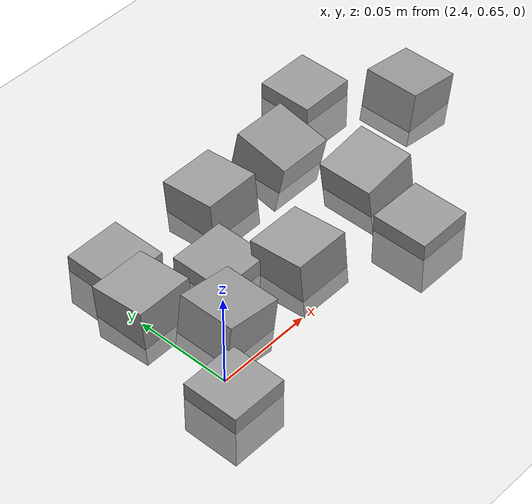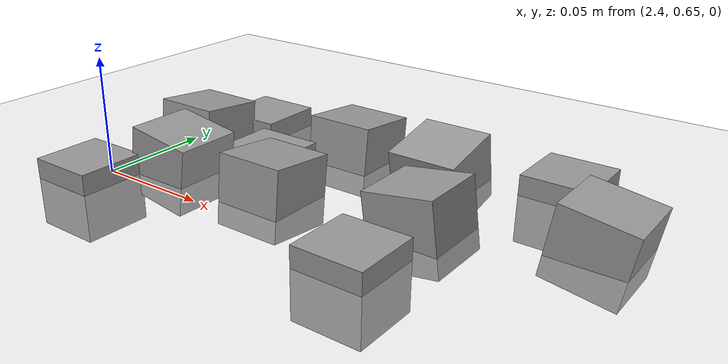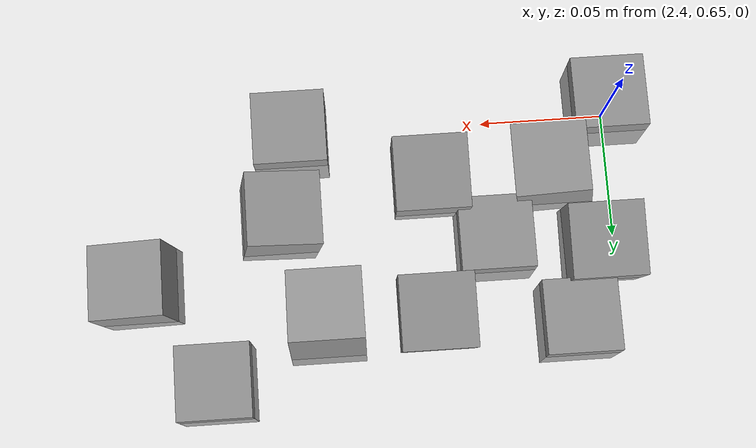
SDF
<sdf version="1.7">
 <world name="default">
  <model name="ground_plane">
   <static>1</static>
   <link name="link">
    <collision name="collision">
     <geometry><plane><normal>0 0 1</normal><size>100 100</size></plane></geometry>
     <surface><friction><ode><mu>100</mu><mu2>50</mu2></ode></friction></surface>
    </collision>
    <visual name="visual">
     <cast_shadows>0</cast_shadows>
     <geometry><plane><normal>0 0 1</normal><size>100 100</size></plane></geometry>
     <material>
      <script><uri>file://media/materials/scripts/gazebo.material</uri><name>Gazebo/Grey</name></script>
     </material>
    </visual>
   </link>
  </model>
  <model name="stone_road_8">
   <link name="link_0_clone_2_clone_0">
    <inertial>
     <mass>1</mass>
     <inertia>
      <ixx>0.166667</ixx>
      <ixy>0</ixy>
      <ixz>0</ixz>
      <iyy>0.166667</iyy>
      <iyz>0</iyz>
      <izz>0.166667</izz>
     </inertia>
    </inertial>
    <pose>0.026852 -0.0813 0.003778 0 0.15 0</pose>
    <kinematic>1</kinematic>
    <visual name="visual">
     <geometry><box><size>0.03 0.03 0.03</size></box></geometry>
     <material>
      <lighting>1</lighting>
      <script><uri>file://media/materials/scripts/gazebo.material</uri><name>Gazebo/Grey</name></script>
      <shader type="pixel"><normal_map>__default__</normal_map></shader>
      <ambient>0.3 0.3 0.3 1</ambient>
      <diffuse>0.7 0.7 0.7 1</diffuse>
      <specular>0.01 0.01 0.01 1</specular>
      <emissive>0 0 0 1</emissive>
     </material>
    </visual>
    <collision name="collision">
     <geometry><box><size>0.03 0.03 0.03</size></box></geometry>
     <surface>
      <friction>
       <ode><mu>1</mu><mu2>1</mu2><fdir1>0 0 0</fdir1><slip1>0</slip1><slip2>0</slip2></ode>
       <torsional>
        <coefficient>1</coefficient>
        <patch_radius>0</patch_radius>
        <surface_radius>0</surface_radius>
        <use_patch_radius>1</use_patch_radius>
        <ode><slip>0</slip></ode>
       </torsional>
      </friction>
      <bounce><restitution_coefficient>0</restitution_coefficient><threshold>1e+06</threshold></bounce>
      <contact>
       <collide_without_contact>0</collide_without_contact>
       <collide_without_contact_bitmask>1</collide_without_contact_bitmask>
       <collide_bitmask>1</collide_bitmask>
       <ode>
        <soft_cfm>0</soft_cfm>
        <soft_erp>0.2</soft_erp>
        <kp>1e+13</kp>
        <kd>1</kd>
        <max_vel>0.01</max_vel>
        <min_depth>0</min_depth>
       </ode>
       <bullet>
        <split_impulse>1</split_impulse>
        <split_impulse_penetration_threshold>-0.01</split_impulse_penetration_threshold>
        <soft_cfm>0</soft_cfm>
        <soft_erp>0.2</soft_erp>
        <kp>1e+13</kp>
        <kd>1</kd>
       </bullet>
      </contact>
     </surface>
    </collision>
   </link>
   <link name="link_0_clone_2_clone_2_clone_13_clone_clone_16_clone_13">
    <inertial>
     <mass>1</mass>
     <inertia>
      <ixx>0.166667</ixx>
      <ixy>0</ixy>
      <ixz>0</ixz>
      <iyy>0.166667</iyy>
      <iyz>0</iyz>
      <izz>0.166667</izz>
     </inertia>
    </inertial>
    <pose>0.168013 -0.00203 -0.006222 0 -0 0</pose>
    <kinematic>1</kinematic>
    <visual name="visual">
     <geometry><box><size>0.03 0.03 0.03</size></box></geometry>
     <material>
      <lighting>1</lighting>
      <script><uri>file://media/materials/scripts/gazebo.material</uri><name>Gazebo/Grey</name></script>
      <shader type="pixel"><normal_map>__default__</normal_map></shader>
      <ambient>0.3 0.3 0.3 1</ambient>
      <diffuse>0.7 0.7 0.7 1</diffuse>
      <specular>0.01 0.01 0.01 1</specular>
      <emissive>0 0 0 1</emissive>
     </material>
    </visual>
    <collision name="collision">
     <geometry><box><size>0.03 0.03 0.03</size></box></geometry>
     <surface>
      <friction>
       <ode><mu>1</mu><mu2>1</mu2><fdir1>0 0 0</fdir1><slip1>0</slip1><slip2>0</slip2></ode>
       <torsional>
        <coefficient>1</coefficient>
        <patch_radius>0</patch_radius>
        <surface_radius>0</surface_radius>
        <use_patch_radius>1</use_patch_radius>
        <ode><slip>0</slip></ode>
       </torsional>
      </friction>
      <bounce><restitution_coefficient>0</restitution_coefficient><threshold>1e+06</threshold></bounce>
      <contact>
       <collide_without_contact>0</collide_without_contact>
       <collide_without_contact_bitmask>1</collide_without_contact_bitmask>
       <collide_bitmask>1</collide_bitmask>
       <ode>
        <soft_cfm>0</soft_cfm>
        <soft_erp>0.2</soft_erp>
        <kp>1e+13</kp>
        <kd>1</kd>
        <max_vel>0.01</max_vel>
        <min_depth>0</min_depth>
       </ode>
       <bullet>
        <split_impulse>1</split_impulse>
        <split_impulse_penetration_threshold>-0.01</split_impulse_penetration_threshold>
        <soft_cfm>0</soft_cfm>
        <soft_erp>0.2</soft_erp>
        <kp>1e+13</kp>
        <kd>1</kd>
       </bullet>
      </contact>
     </surface>
    </collision>
   </link>
   <link name="link_0_clone_2_clone_2_clone_13_clone_clone_16_clone_14">
    <inertial>
     <mass>1</mass>
     <inertia>
      <ixx>0.166667</ixx>
      <ixy>0</ixy>
      <ixz>0</ixz>
      <iyy>0.166667</iyy>
      <iyz>0</iyz>
      <izz>0.166667</izz>
     </inertia>
    </inertial>
    <pose>0.051911 -0.054424 -0.006222 0 -0 0</pose>
    <kinematic>1</kinematic>
    <visual name="visual">
     <geometry><box><size>0.03 0.03 0.03</size></box></geometry>
     <material>
      <lighting>1</lighting>
      <script><uri>file://media/materials/scripts/gazebo.material</uri><name>Gazebo/Grey</name></script>
      <shader type="pixel"><normal_map>__default__</normal_map></shader>
      <ambient>0.3 0.3 0.3 1</ambient>
      <diffuse>0.7 0.7 0.7 1</diffuse>
      <specular>0.01 0.01 0.01 1</specular>
      <emissive>0 0 0 1</emissive>
     </material>
    </visual>
    <collision name="collision">
     <geometry><box><size>0.03 0.03 0.03</size></box></geometry>
     <surface>
      <friction>
       <ode><mu>1</mu><mu2>1</mu2><fdir1>0 0 0</fdir1><slip1>0</slip1><slip2>0</slip2></ode>
       <torsional>
        <coefficient>1</coefficient>
        <patch_radius>0</patch_radius>
        <surface_radius>0</surface_radius>
        <use_patch_radius>1</use_patch_radius>
        <ode><slip>0</slip></ode>
       </torsional>
      </friction>
      <bounce><restitution_coefficient>0</restitution_coefficient><threshold>1e+06</threshold></bounce>
      <contact>
       <collide_without_contact>0</collide_without_contact>
       <collide_without_contact_bitmask>1</collide_without_contact_bitmask>
       <collide_bitmask>1</collide_bitmask>
       <ode>
        <soft_cfm>0</soft_cfm>
        <soft_erp>0.2</soft_erp>
        <kp>1e+13</kp>
        <kd>1</kd>
        <max_vel>0.01</max_vel>
        <min_depth>0</min_depth>
       </ode>
       <bullet>
        <split_impulse>1</split_impulse>
        <split_impulse_penetration_threshold>-0.01</split_impulse_penetration_threshold>
        <soft_cfm>0</soft_cfm>
        <soft_erp>0.2</soft_erp>
        <kp>1e+13</kp>
        <kd>1</kd>
       </bullet>
      </contact>
     </surface>
    </collision>
   </link>
   <link name="link_0_clone_2_clone_2_clone_13_clone_clone_16_clone_15">
    <inertial>
     <mass>1</mass>
     <inertia>
      <ixx>0.166667</ixx>
      <ixy>0</ixy>
      <ixz>0</ixz>
      <iyy>0.166667</iyy>
      <iyz>0</iyz>
      <izz>0.166667</izz>
     </inertia>
    </inertial>
    <pose>0.133032 -0.103459 -0.006222 0 -0 0</pose>
    <kinematic>1</kinematic>
    <visual name="visual">
     <geometry><box><size>0.03 0.03 0.03</size></box></geometry>
     <material>
      <lighting>1</lighting>
      <script><uri>file://media/materials/scripts/gazebo.material</uri><name>Gazebo/Grey</name></script>
      <shader type="pixel"><normal_map>__default__</normal_map></shader>
      <ambient>0.3 0.3 0.3 1</ambient>
      <diffuse>0.7 0.7 0.7 1</diffuse>
      <specular>0.01 0.01 0.01 1</specular>
      <emissive>0 0 0 1</emissive>
     </material>
    </visual>
    <collision name="collision">
     <geometry><box><size>0.03 0.03 0.03</size></box></geometry>
     <surface>
      <friction>
       <ode><mu>1</mu><mu2>1</mu2><fdir1>0 0 0</fdir1><slip1>0</slip1><slip2>0</slip2></ode>
       <torsional>
        <coefficient>1</coefficient>
        <patch_radius>0</patch_radius>
        <surface_radius>0</surface_radius>
        <use_patch_radius>1</use_patch_radius>
        <ode><slip>0</slip></ode>
       </torsional>
      </friction>
      <bounce><restitution_coefficient>0</restitution_coefficient><threshold>1e+06</threshold></bounce>
      <contact>
       <collide_without_contact>0</collide_without_contact>
       <collide_without_contact_bitmask>1</collide_without_contact_bitmask>
       <collide_bitmask>1</collide_bitmask>
       <ode>
        <soft_cfm>0</soft_cfm>
        <soft_erp>0.2</soft_erp>
        <kp>1e+13</kp>
        <kd>1</kd>
        <max_vel>0.01</max_vel>
        <min_depth>0</min_depth>
       </ode>
       <bullet>
        <split_impulse>1</split_impulse>
        <split_impulse_penetration_threshold>-0.01</split_impulse_penetration_threshold>
        <soft_cfm>0</soft_cfm>
        <soft_erp>0.2</soft_erp>
        <kp>1e+13</kp>
        <kd>1</kd>
       </bullet>
      </contact>
     </surface>
    </collision>
   </link>
   <link name="link_0_clone_2_clone_2_clone_13_clone_clone_16_clone_6">
    <inertial>
     <mass>1</mass>
     <inertia>
      <ixx>0.166667</ixx>
      <ixy>0</ixy>
      <ixz>0</ixz>
      <iyy>0.166667</iyy>
      <iyz>0</iyz>
      <izz>0.166667</izz>
     </inertia>
    </inertial>
    <pose>0.020774 -0.018727 -0.006222 0 -0 0</pose>
    <kinematic>1</kinematic>
    <visual name="visual">
     <geometry><box><size>0.03 0.03 0.03</size></box></geometry>
     <material>
      <lighting>1</lighting>
      <script><uri>file://media/materials/scripts/gazebo.material</uri><name>Gazebo/Grey</name></script>
      <shader type="pixel"><normal_map>__default__</normal_map></shader>
      <ambient>0.3 0.3 0.3 1</ambient>
      <diffuse>0.7 0.7 0.7 1</diffuse>
      <specular>0.01 0.01 0.01 1</specular>
      <emissive>0 0 0 1</emissive>
     </material>
    </visual>
    <collision name="collision">
     <geometry><box><size>0.03 0.03 0.03</size></box></geometry>
     <surface>
      <friction>
       <ode><mu>1</mu><mu2>1</mu2><fdir1>0 0 0</fdir1><slip1>0</slip1><slip2>0</slip2></ode>
       <torsional>
        <coefficient>1</coefficient>
        <patch_radius>0</patch_radius>
        <surface_radius>0</surface_radius>
        <use_patch_radius>1</use_patch_radius>
        <ode><slip>0</slip></ode>
       </torsional>
      </friction>
      <bounce><restitution_coefficient>0</restitution_coefficient><threshold>1e+06</threshold></bounce>
      <contact>
       <collide_without_contact>0</collide_without_contact>
       <collide_without_contact_bitmask>1</collide_without_contact_bitmask>
       <collide_bitmask>1</collide_bitmask>
       <ode>
        <soft_cfm>0</soft_cfm>
        <soft_erp>0.2</soft_erp>
        <kp>1e+13</kp>
        <kd>1</kd>
        <max_vel>0.01</max_vel>
        <min_depth>0</min_depth>
       </ode>
       <bullet>
        <split_impulse>1</split_impulse>
        <split_impulse_penetration_threshold>-0.01</split_impulse_penetration_threshold>
        <soft_cfm>0</soft_cfm>
        <soft_erp>0.2</soft_erp>
        <kp>1e+13</kp>
        <kd>1</kd>
       </bullet>
      </contact>
     </surface>
    </collision>
   </link>
   <link name="link_0_clone_2_clone_2_clone_13_clone_clone_16_clone_7">
    <inertial>
     <mass>1</mass>
     <inertia>
      <ixx>0.166667</ixx>
      <ixy>0</ixy>
      <ixz>0</ixz>
      <iyy>0.166667</iyy>
      <iyz>0</iyz>
      <izz>0.166667</izz>
     </inertia>
    </inertial>
    <pose>0.000883 -0.109959 -0.006222 0 -0 0</pose>
    <kinematic>1</kinematic>
    <visual name="visual">
     <geometry><box><size>0.03 0.03 0.03</size></box></geometry>
     <material>
      <lighting>1</lighting>
      <script><uri>file://media/materials/scripts/gazebo.material</uri><name>Gazebo/Grey</name></script>
      <shader type="pixel"><normal_map>__default__</normal_map></shader>
      <ambient>0.3 0.3 0.3 1</ambient>
      <diffuse>0.7 0.7 0.7 1</diffuse>
      <specular>0.01 0.01 0.01 1</specular>
      <emissive>0 0 0 1</emissive>
     </material>
    </visual>
    <collision name="collision">
     <geometry><box><size>0.03 0.03 0.03</size></box></geometry>
     <surface>
      <friction>
       <ode><mu>1</mu><mu2>1</mu2><fdir1>0 0 0</fdir1><slip1>0</slip1><slip2>0</slip2></ode>
       <torsional>
        <coefficient>1</coefficient>
        <patch_radius>0</patch_radius>
        <surface_radius>0</surface_radius>
        <use_patch_radius>1</use_patch_radius>
        <ode><slip>0</slip></ode>
       </torsional>
      </friction>
      <bounce><restitution_coefficient>0</restitution_coefficient><threshold>1e+06</threshold></bounce>
      <contact>
       <collide_without_contact>0</collide_without_contact>
       <collide_without_contact_bitmask>1</collide_without_contact_bitmask>
       <collide_bitmask>1</collide_bitmask>
       <ode>
        <soft_cfm>0</soft_cfm>
        <soft_erp>0.2</soft_erp>
        <kp>1e+13</kp>
        <kd>1</kd>
        <max_vel>0.01</max_vel>
        <min_depth>0</min_depth>
       </ode>
       <bullet>
        <split_impulse>1</split_impulse>
        <split_impulse_penetration_threshold>-0.01</split_impulse_penetration_threshold>
        <soft_cfm>0</soft_cfm>
        <soft_erp>0.2</soft_erp>
        <kp>1e+13</kp>
        <kd>1</kd>
       </bullet>
      </contact>
     </surface>
    </collision>
   </link>
   <link name="link_0_clone_2_clone_2_clone_13_clone_clone_4">
    <inertial>
     <mass>1</mass>
     <inertia>
      <ixx>0.166667</ixx>
      <ixy>0</ixy>
      <ixz>0</ixz>
      <iyy>0.166667</iyy>
      <iyz>0</iyz>
      <izz>0.166667</izz>
     </inertia>
    </inertial>
    <pose>0.078198 -0.024053 0.003778 -0.1 0 0</pose>
    <kinematic>1</kinematic>
    <visual name="visual">
     <geometry><box><size>0.03 0.03 0.03</size></box></geometry>
     <material>
      <lighting>1</lighting>
      <script><uri>file://media/materials/scripts/gazebo.material</uri><name>Gazebo/Grey</name></script>
      <shader type="pixel"><normal_map>__default__</normal_map></shader>
      <ambient>0.3 0.3 0.3 1</ambient>
      <diffuse>0.7 0.7 0.7 1</diffuse>
      <specular>0.01 0.01 0.01 1</specular>
      <emissive>0 0 0 1</emissive>
     </material>
    </visual>
    <collision name="collision">
     <geometry><box><size>0.03 0.03 0.03</size></box></geometry>
     <surface>
      <friction>
       <ode><mu>1</mu><mu2>1</mu2><fdir1>0 0 0</fdir1><slip1>0</slip1><slip2>0</slip2></ode>
       <torsional>
        <coefficient>1</coefficient>
        <patch_radius>0</patch_radius>
        <surface_radius>0</surface_radius>
        <use_patch_radius>1</use_patch_radius>
        <ode><slip>0</slip></ode>
       </torsional>
      </friction>
      <bounce><restitution_coefficient>0</restitution_coefficient><threshold>1e+06</threshold></bounce>
      <contact>
       <collide_without_contact>0</collide_without_contact>
       <collide_without_contact_bitmask>1</collide_without_contact_bitmask>
       <collide_bitmask>1</collide_bitmask>
       <ode>
        <soft_cfm>0</soft_cfm>
        <soft_erp>0.2</soft_erp>
        <kp>1e+13</kp>
        <kd>1</kd>
        <max_vel>0.01</max_vel>
        <min_depth>0</min_depth>
       </ode>
       <bullet>
        <split_impulse>1</split_impulse>
        <split_impulse_penetration_threshold>-0.01</split_impulse_penetration_threshold>
        <soft_cfm>0</soft_cfm>
        <soft_erp>0.2</soft_erp>
        <kp>1e+13</kp>
        <kd>1</kd>
       </bullet>
      </contact>
     </surface>
    </collision>
   </link>
   <link name="link_0_clone_2_clone_2_clone_13_clone_clone_5">
    <inertial>
     <mass>1</mass>
     <inertia>
      <ixx>0.166667</ixx>
      <ixy>0</ixy>
      <ixz>0</ixz>
      <iyy>0.166667</iyy>
      <iyz>0</iyz>
      <izz>0.166667</izz>
     </inertia>
    </inertial>
    <pose>0.076743 -0.079785 0.003778 -0.1 0 0</pose>
    <kinematic>1</kinematic>
    <visual name="visual">
     <geometry><box><size>0.03 0.03 0.03</size></box></geometry>
     <material>
      <lighting>1</lighting>
      <script><uri>file://media/materials/scripts/gazebo.material</uri><name>Gazebo/Grey</name></script>
      <shader type="pixel"><normal_map>__default__</normal_map></shader>
      <ambient>0.3 0.3 0.3 1</ambient>
      <diffuse>0.7 0.7 0.7 1</diffuse>
      <specular>0.01 0.01 0.01 1</specular>
      <emissive>0 0 0 1</emissive>
     </material>
    </visual>
    <collision name="collision">
     <geometry><box><size>0.03 0.03 0.03</size></box></geometry>
     <surface>
      <friction>
       <ode><mu>1</mu><mu2>1</mu2><fdir1>0 0 0</fdir1><slip1>0</slip1><slip2>0</slip2></ode>
       <torsional>
        <coefficient>1</coefficient>
        <patch_radius>0</patch_radius>
        <surface_radius>0</surface_radius>
        <use_patch_radius>1</use_patch_radius>
        <ode><slip>0</slip></ode>
       </torsional>
      </friction>
      <bounce><restitution_coefficient>0</restitution_coefficient><threshold>1e+06</threshold></bounce>
      <contact>
       <collide_without_contact>0</collide_without_contact>
       <collide_without_contact_bitmask>1</collide_without_contact_bitmask>
       <collide_bitmask>1</collide_bitmask>
       <ode>
        <soft_cfm>0</soft_cfm>
        <soft_erp>0.2</soft_erp>
        <kp>1e+13</kp>
        <kd>1</kd>
        <max_vel>0.01</max_vel>
        <min_depth>0</min_depth>
       </ode>
       <bullet>
        <split_impulse>1</split_impulse>
        <split_impulse_penetration_threshold>-0.01</split_impulse_penetration_threshold>
        <soft_cfm>0</soft_cfm>
        <soft_erp>0.2</soft_erp>
        <kp>1e+13</kp>
        <kd>1</kd>
       </bullet>
      </contact>
     </surface>
    </collision>
   </link>
   <link name="link_0_clone_2_clone_2_clone_13_clone_clone_6">
    <inertial>
     <mass>1</mass>
     <inertia>
      <ixx>0.166667</ixx>
      <ixy>0</ixy>
      <ixz>0</ixz>
      <iyy>0.166667</iyy>
      <iyz>0</iyz>
      <izz>0.166667</izz>
     </inertia>
    </inertial>
    <pose>0.009445 -0.048118 0.003778 -0.1 0 0</pose>
    <kinematic>1</kinematic>
    <visual name="visual">
     <geometry><box><size>0.03 0.03 0.03</size></box></geometry>
     <material>
      <lighting>1</lighting>
      <script><uri>file://media/materials/scripts/gazebo.material</uri><name>Gazebo/Grey</name></script>
      <shader type="pixel"><normal_map>__default__</normal_map></shader>
      <ambient>0.3 0.3 0.3 1</ambient>
      <diffuse>0.7 0.7 0.7 1</diffuse>
      <specular>0.01 0.01 0.01 1</specular>
      <emissive>0 0 0 1</emissive>
     </material>
    </visual>
    <collision name="collision">
     <geometry><box><size>0.03 0.03 0.03</size></box></geometry>
     <surface>
      <friction>
       <ode><mu>1</mu><mu2>1</mu2><fdir1>0 0 0</fdir1><slip1>0</slip1><slip2>0</slip2></ode>
       <torsional>
        <coefficient>1</coefficient>
        <patch_radius>0</patch_radius>
        <surface_radius>0</surface_radius>
        <use_patch_radius>1</use_patch_radius>
        <ode><slip>0</slip></ode>
       </torsional>
      </friction>
      <bounce><restitution_coefficient>0</restitution_coefficient><threshold>1e+06</threshold></bounce>
      <contact>
       <collide_without_contact>0</collide_without_contact>
       <collide_without_contact_bitmask>1</collide_without_contact_bitmask>
       <collide_bitmask>1</collide_bitmask>
       <ode>
        <soft_cfm>0</soft_cfm>
        <soft_erp>0.2</soft_erp>
        <kp>1e+13</kp>
        <kd>1</kd>
        <max_vel>0.01</max_vel>
        <min_depth>0</min_depth>
       </ode>
       <bullet>
        <split_impulse>1</split_impulse>
        <split_impulse_penetration_threshold>-0.01</split_impulse_penetration_threshold>
        <soft_cfm>0</soft_cfm>
        <soft_erp>0.2</soft_erp>
        <kp>1e+13</kp>
        <kd>1</kd>
       </bullet>
      </contact>
     </surface>
    </collision>
   </link>
   <link name="link_0_clone_2_clone_2_clone_5">
    <inertial>
     <mass>1</mass>
     <inertia>
      <ixx>0.166667</ixx>
      <ixy>0</ixy>
      <ixz>0</ixz>
      <iyy>0.166667</iyy>
      <iyz>0</iyz>
      <izz>0.166667</izz>
     </inertia>
    </inertial>
    <pose>0.13842 -0.067468 0.003778 0 -0.15 0</pose>
    <kinematic>1</kinematic>
    <visual name="visual">
     <geometry><box><size>0.03 0.03 0.03</size></box></geometry>
     <material>
      <lighting>1</lighting>
      <script><uri>file://media/materials/scripts/gazebo.material</uri><name>Gazebo/Grey</name></script>
      <shader type="pixel"><normal_map>__default__</normal_map></shader>
      <ambient>0.3 0.3 0.3 1</ambient>
      <diffuse>0.7 0.7 0.7 1</diffuse>
      <specular>0.01 0.01 0.01 1</specular>
      <emissive>0 0 0 1</emissive>
     </material>
    </visual>
    <collision name="collision">
     <geometry><box><size>0.03 0.03 0.03</size></box></geometry>
     <surface>
      <friction>
       <ode><mu>1</mu><mu2>1</mu2><fdir1>0 0 0</fdir1><slip1>0</slip1><slip2>0</slip2></ode>
       <torsional>
        <coefficient>1</coefficient>
        <patch_radius>0</patch_radius>
        <surface_radius>0</surface_radius>
        <use_patch_radius>1</use_patch_radius>
        <ode><slip>0</slip></ode>
       </torsional>
      </friction>
      <bounce><restitution_coefficient>0</restitution_coefficient><threshold>1e+06</threshold></bounce>
      <contact>
       <collide_without_contact>0</collide_without_contact>
       <collide_without_contact_bitmask>1</collide_without_contact_bitmask>
       <collide_bitmask>1</collide_bitmask>
       <ode>
        <soft_cfm>0</soft_cfm>
        <soft_erp>0.2</soft_erp>
        <kp>1e+13</kp>
        <kd>1</kd>
        <max_vel>0.01</max_vel>
        <min_depth>0</min_depth>
       </ode>
       <bullet>
        <split_impulse>1</split_impulse>
        <split_impulse_penetration_threshold>-0.01</split_impulse_penetration_threshold>
        <soft_cfm>0</soft_cfm>
        <soft_erp>0.2</soft_erp>
        <kp>1e+13</kp>
        <kd>1</kd>
       </bullet>
      </contact>
     </surface>
    </collision>
   </link>
   <link name="link_0_clone_2_clone_8">
    <inertial>
     <mass>1</mass>
     <inertia>
      <ixx>0.166667</ixx>
      <ixy>0</ixy>
      <ixz>0</ixz>
      <iyy>0.166667</iyy>
      <iyz>0</iyz>
      <izz>0.166667</izz>
     </inertia>
    </inertial>
    <pose>0.197388 -0.042712 0.003778 0 0.15 0</pose>
    <kinematic>1</kinematic>
    <visual name="visual">
     <geometry><box><size>0.03 0.03 0.03</size></box></geometry>
     <material>
      <lighting>1</lighting>
      <script><uri>file://media/materials/scripts/gazebo.material</uri><name>Gazebo/Grey</name></script>
      <shader type="pixel"><normal_map>__default__</normal_map></shader>
      <ambient>0.3 0.3 0.3 1</ambient>
      <diffuse>0.7 0.7 0.7 1</diffuse>
      <specular>0.01 0.01 0.01 1</specular>
      <emissive>0 0 0 1</emissive>
     </material>
    </visual>
    <collision name="collision">
     <geometry><box><size>0.03 0.03 0.03</size></box></geometry>
     <surface>
      <friction>
       <ode><mu>1</mu><mu2>1</mu2><fdir1>0 0 0</fdir1><slip1>0</slip1><slip2>0</slip2></ode>
       <torsional>
        <coefficient>1</coefficient>
        <patch_radius>0</patch_radius>
        <surface_radius>0</surface_radius>
        <use_patch_radius>1</use_patch_radius>
        <ode><slip>0</slip></ode>
       </torsional>
      </friction>
      <bounce><restitution_coefficient>0</restitution_coefficient><threshold>1e+06</threshold></bounce>
      <contact>
       <collide_without_contact>0</collide_without_contact>
       <collide_without_contact_bitmask>1</collide_without_contact_bitmask>
       <collide_bitmask>1</collide_bitmask>
       <ode>
        <soft_cfm>0</soft_cfm>
        <soft_erp>0.2</soft_erp>
        <kp>1e+13</kp>
        <kd>1</kd>
        <max_vel>0.01</max_vel>
        <min_depth>0</min_depth>
       </ode>
       <bullet>
        <split_impulse>1</split_impulse>
        <split_impulse_penetration_threshold>-0.01</split_impulse_penetration_threshold>
        <soft_cfm>0</soft_cfm>
        <soft_erp>0.2</soft_erp>
        <kp>1e+13</kp>
        <kd>1</kd>
       </bullet>
      </contact>
     </surface>
    </collision>
   </link>
   <link name="link_0_clone_9">
    <inertial>
     <mass>1</mass>
     <inertia>
      <ixx>0.166667</ixx>
      <ixy>0</ixy>
      <ixz>0</ixz>
      <iyy>0.166667</iyy>
      <iyz>0</iyz>
      <izz>0.166667</izz>
     </inertia>
    </inertial>
    <pose>0.122173 -0.025452 0.003778 0.2 -0 0</pose>
    <kinematic>1</kinematic>
    <visual name="visual">
     <geometry><box><size>0.03 0.03 0.03</size></box></geometry>
     <material>
      <lighting>1</lighting>
      <script><uri>file://media/materials/scripts/gazebo.material</uri><name>Gazebo/Grey</name></script>
      <shader type="pixel"><normal_map>__default__</normal_map></shader>
      <ambient>0.3 0.3 0.3 1</ambient>
      <diffuse>0.7 0.7 0.7 1</diffuse>
      <specular>0.01 0.01 0.01 1</specular>
      <emissive>0 0 0 1</emissive>
     </material>
    </visual>
    <collision name="collision">
     <geometry><box><size>0.03 0.03 0.03</size></box></geometry>
     <surface>
      <friction>
       <ode><mu>1</mu><mu2>1</mu2><fdir1>0 0 0</fdir1><slip1>0</slip1><slip2>0</slip2></ode>
       <torsional>
        <coefficient>1</coefficient>
        <patch_radius>0</patch_radius>
        <surface_radius>0</surface_radius>
        <use_patch_radius>1</use_patch_radius>
        <ode><slip>0</slip></ode>
       </torsional>
      </friction>
      <bounce><restitution_coefficient>0</restitution_coefficient><threshold>1e+06</threshold></bounce>
      <contact>
       <collide_without_contact>0</collide_without_contact>
       <collide_without_contact_bitmask>1</collide_without_contact_bitmask>
       <collide_bitmask>1</collide_bitmask>
       <ode>
        <soft_cfm>0</soft_cfm>
        <soft_erp>0.2</soft_erp>
        <kp>1e+13</kp>
        <kd>1</kd>
        <max_vel>0.01</max_vel>
        <min_depth>0</min_depth>
       </ode>
       <bullet>
        <split_impulse>1</split_impulse>
        <split_impulse_penetration_threshold>-0.01</split_impulse_penetration_threshold>
        <soft_cfm>0</soft_cfm>
        <soft_erp>0.2</soft_erp>
        <kp>1e+13</kp>
        <kd>1</kd>
       </bullet>
      </contact>
     </surface>
    </collision>
   </link>
   <static>0</static>
   <pose>2.39572 0.751546 -0 0 -0 0</pose>
  </model>
 </world>
</sdf>
